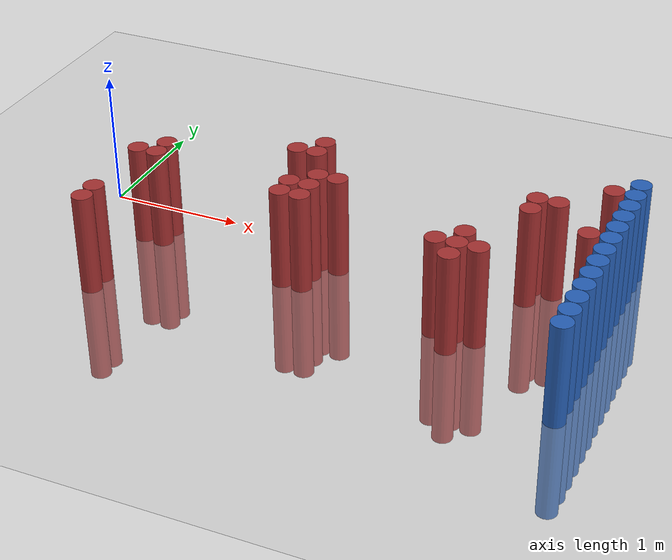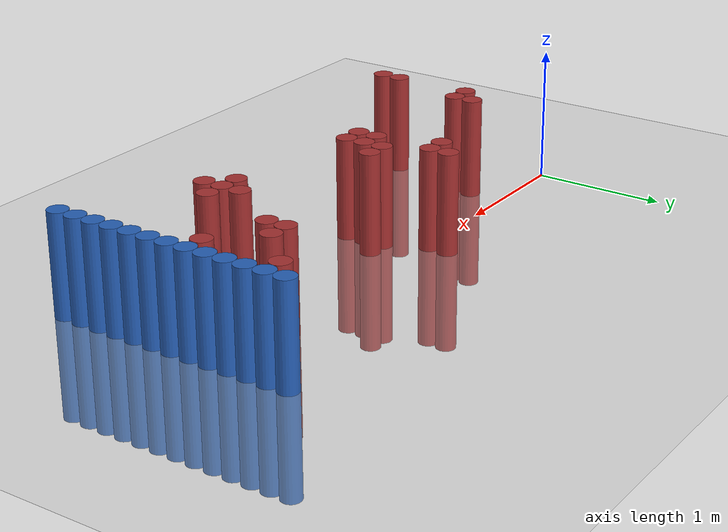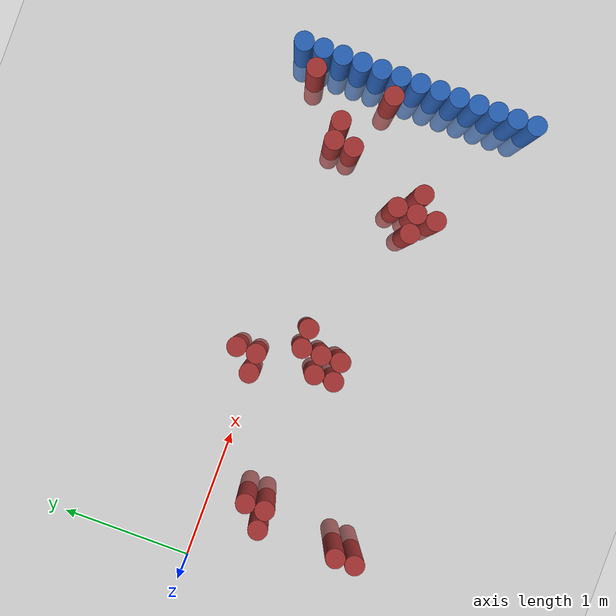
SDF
<sdf version="1.6">
 <world name="default">
  <model name="ground_plane">
   <static>1</static>
   <link name="link">
    <collision name="collision">
     <geometry><plane><normal>0 0 1</normal><size>100 100</size></plane></geometry>
     <surface><friction><ode><mu>100</mu><mu2>50</mu2></ode></friction></surface>
    </collision>
    <visual name="visual">
     <cast_shadows>0</cast_shadows>
     <geometry><plane><normal>0 0 1</normal><size>100 100</size></plane></geometry>
     <material>
      <script><uri>file://media/materials/scripts/gazebo.material</uri><name>Gazebo/Grey</name></script>
     </material>
    </visual>
   </link>
  </model>
  <model name="unit_cylinder_96">
   <static>1</static>
   <pose>3.925000 -1.325000 0.000000 0.000000 0.000000 0.000000</pose>
   <link name="link">
    <inertial>
     <mass>1</mass>
     <inertia><ixx>0.145833</ixx><ixy>0</ixy><ixz>0</ixz><iyy>0.145833</iyy><iyz>0</iyz><izz>0.125</izz></inertia>
    </inertial>
    <collision name="collision">
     <geometry><cylinder><radius>0.075000</radius><length>1.5</length></cylinder></geometry>
    </collision>
    <visual name="visual">
     <geometry><cylinder><radius>0.075000</radius><length>1.5</length></cylinder></geometry>
     <material>
      <ambient>0.152000 0.379000 0.720000 1</ambient>
      <diffuse>0.152000 0.379000 0.720000 1</diffuse>
     </material>
     <material>
      <script><name>Gazebo/Grey</name><uri>file://media/materials/scripts/gazebo.material</uri></script>
     </material>
    </visual>
   </link>
  </model>
  <model name="unit_cylinder_98">
   <static>1</static>
   <pose>3.925000 -1.175000 0.000000 0.000000 0.000000 0.000000</pose>
   <link name="link">
    <inertial>
     <mass>1</mass>
     <inertia><ixx>0.145833</ixx><ixy>0</ixy><ixz>0</ixz><iyy>0.145833</iyy><iyz>0</iyz><izz>0.125</izz></inertia>
    </inertial>
    <collision name="collision">
     <geometry><cylinder><radius>0.075000</radius><length>1.5</length></cylinder></geometry>
    </collision>
    <visual name="visual">
     <geometry><cylinder><radius>0.075000</radius><length>1.5</length></cylinder></geometry>
     <material>
      <ambient>0.152000 0.379000 0.720000 1</ambient>
      <diffuse>0.152000 0.379000 0.720000 1</diffuse>
     </material>
     <material>
      <script><name>Gazebo/Grey</name><uri>file://media/materials/scripts/gazebo.material</uri></script>
     </material>
    </visual>
   </link>
  </model>
  <model name="unit_cylinder_100">
   <static>1</static>
   <pose>3.925000 -1.025000 0.000000 0.000000 0.000000 0.000000</pose>
   <link name="link">
    <inertial>
     <mass>1</mass>
     <inertia><ixx>0.145833</ixx><ixy>0</ixy><ixz>0</ixz><iyy>0.145833</iyy><iyz>0</iyz><izz>0.125</izz></inertia>
    </inertial>
    <collision name="collision">
     <geometry><cylinder><radius>0.075000</radius><length>1.5</length></cylinder></geometry>
    </collision>
    <visual name="visual">
     <geometry><cylinder><radius>0.075000</radius><length>1.5</length></cylinder></geometry>
     <material>
      <ambient>0.152000 0.379000 0.720000 1</ambient>
      <diffuse>0.152000 0.379000 0.720000 1</diffuse>
     </material>
     <material>
      <script><name>Gazebo/Grey</name><uri>file://media/materials/scripts/gazebo.material</uri></script>
     </material>
    </visual>
   </link>
  </model>
  <model name="unit_cylinder_102">
   <static>1</static>
   <pose>3.925000 -0.875000 0.000000 0.000000 0.000000 0.000000</pose>
   <link name="link">
    <inertial>
     <mass>1</mass>
     <inertia><ixx>0.145833</ixx><ixy>0</ixy><ixz>0</ixz><iyy>0.145833</iyy><iyz>0</iyz><izz>0.125</izz></inertia>
    </inertial>
    <collision name="collision">
     <geometry><cylinder><radius>0.075000</radius><length>1.5</length></cylinder></geometry>
    </collision>
    <visual name="visual">
     <geometry><cylinder><radius>0.075000</radius><length>1.5</length></cylinder></geometry>
     <material>
      <ambient>0.152000 0.379000 0.720000 1</ambient>
      <diffuse>0.152000 0.379000 0.720000 1</diffuse>
     </material>
     <material>
      <script><name>Gazebo/Grey</name><uri>file://media/materials/scripts/gazebo.material</uri></script>
     </material>
    </visual>
   </link>
  </model>
  <model name="unit_cylinder_104">
   <static>1</static>
   <pose>3.925000 -0.725000 0.000000 0.000000 0.000000 0.000000</pose>
   <link name="link">
    <inertial>
     <mass>1</mass>
     <inertia><ixx>0.145833</ixx><ixy>0</ixy><ixz>0</ixz><iyy>0.145833</iyy><iyz>0</iyz><izz>0.125</izz></inertia>
    </inertial>
    <collision name="collision">
     <geometry><cylinder><radius>0.075000</radius><length>1.5</length></cylinder></geometry>
    </collision>
    <visual name="visual">
     <geometry><cylinder><radius>0.075000</radius><length>1.5</length></cylinder></geometry>
     <material>
      <ambient>0.152000 0.379000 0.720000 1</ambient>
      <diffuse>0.152000 0.379000 0.720000 1</diffuse>
     </material>
     <material>
      <script><name>Gazebo/Grey</name><uri>file://media/materials/scripts/gazebo.material</uri></script>
     </material>
    </visual>
   </link>
  </model>
  <model name="unit_cylinder_106">
   <static>1</static>
   <pose>3.925000 -0.575000 0.000000 0.000000 0.000000 0.000000</pose>
   <link name="link">
    <inertial>
     <mass>1</mass>
     <inertia><ixx>0.145833</ixx><ixy>0</ixy><ixz>0</ixz><iyy>0.145833</iyy><iyz>0</iyz><izz>0.125</izz></inertia>
    </inertial>
    <collision name="collision">
     <geometry><cylinder><radius>0.075000</radius><length>1.5</length></cylinder></geometry>
    </collision>
    <visual name="visual">
     <geometry><cylinder><radius>0.075000</radius><length>1.5</length></cylinder></geometry>
     <material>
      <ambient>0.152000 0.379000 0.720000 1</ambient>
      <diffuse>0.152000 0.379000 0.720000 1</diffuse>
     </material>
     <material>
      <script><name>Gazebo/Grey</name><uri>file://media/materials/scripts/gazebo.material</uri></script>
     </material>
    </visual>
   </link>
  </model>
  <model name="unit_cylinder_108">
   <static>1</static>
   <pose>3.925000 -0.425000 0.000000 0.000000 0.000000 0.000000</pose>
   <link name="link">
    <inertial>
     <mass>1</mass>
     <inertia><ixx>0.145833</ixx><ixy>0</ixy><ixz>0</ixz><iyy>0.145833</iyy><iyz>0</iyz><izz>0.125</izz></inertia>
    </inertial>
    <collision name="collision">
     <geometry><cylinder><radius>0.075000</radius><length>1.5</length></cylinder></geometry>
    </collision>
    <visual name="visual">
     <geometry><cylinder><radius>0.075000</radius><length>1.5</length></cylinder></geometry>
     <material>
      <ambient>0.152000 0.379000 0.720000 1</ambient>
      <diffuse>0.152000 0.379000 0.720000 1</diffuse>
     </material>
     <material>
      <script><name>Gazebo/Grey</name><uri>file://media/materials/scripts/gazebo.material</uri></script>
     </material>
    </visual>
   </link>
  </model>
  <model name="unit_cylinder_110">
   <static>1</static>
   <pose>3.925000 -0.275000 0.000000 0.000000 0.000000 0.000000</pose>
   <link name="link">
    <inertial>
     <mass>1</mass>
     <inertia><ixx>0.145833</ixx><ixy>0</ixy><ixz>0</ixz><iyy>0.145833</iyy><iyz>0</iyz><izz>0.125</izz></inertia>
    </inertial>
    <collision name="collision">
     <geometry><cylinder><radius>0.075000</radius><length>1.5</length></cylinder></geometry>
    </collision>
    <visual name="visual">
     <geometry><cylinder><radius>0.075000</radius><length>1.5</length></cylinder></geometry>
     <material>
      <ambient>0.152000 0.379000 0.720000 1</ambient>
      <diffuse>0.152000 0.379000 0.720000 1</diffuse>
     </material>
     <material>
      <script><name>Gazebo/Grey</name><uri>file://media/materials/scripts/gazebo.material</uri></script>
     </material>
    </visual>
   </link>
  </model>
  <model name="unit_cylinder_112">
   <static>1</static>
   <pose>3.925000 -0.125000 0.000000 0.000000 0.000000 0.000000</pose>
   <link name="link">
    <inertial>
     <mass>1</mass>
     <inertia><ixx>0.145833</ixx><ixy>0</ixy><ixz>0</ixz><iyy>0.145833</iyy><iyz>0</iyz><izz>0.125</izz></inertia>
    </inertial>
    <collision name="collision">
     <geometry><cylinder><radius>0.075000</radius><length>1.5</length></cylinder></geometry>
    </collision>
    <visual name="visual">
     <geometry><cylinder><radius>0.075000</radius><length>1.5</length></cylinder></geometry>
     <material>
      <ambient>0.152000 0.379000 0.720000 1</ambient>
      <diffuse>0.152000 0.379000 0.720000 1</diffuse>
     </material>
     <material>
      <script><name>Gazebo/Grey</name><uri>file://media/materials/scripts/gazebo.material</uri></script>
     </material>
    </visual>
   </link>
  </model>
  <model name="unit_cylinder_114">
   <static>1</static>
   <pose>3.925000 0.025000 0.000000 0.000000 0.000000 0.000000</pose>
   <link name="link">
    <inertial>
     <mass>1</mass>
     <inertia><ixx>0.145833</ixx><ixy>0</ixy><ixz>0</ixz><iyy>0.145833</iyy><iyz>0</iyz><izz>0.125</izz></inertia>
    </inertial>
    <collision name="collision">
     <geometry><cylinder><radius>0.075000</radius><length>1.5</length></cylinder></geometry>
    </collision>
    <visual name="visual">
     <geometry><cylinder><radius>0.075000</radius><length>1.5</length></cylinder></geometry>
     <material>
      <ambient>0.152000 0.379000 0.720000 1</ambient>
      <diffuse>0.152000 0.379000 0.720000 1</diffuse>
     </material>
     <material>
      <script><name>Gazebo/Grey</name><uri>file://media/materials/scripts/gazebo.material</uri></script>
     </material>
    </visual>
   </link>
  </model>
  <model name="unit_cylinder_116">
   <static>1</static>
   <pose>3.925000 0.175000 0.000000 0.000000 0.000000 0.000000</pose>
   <link name="link">
    <inertial>
     <mass>1</mass>
     <inertia><ixx>0.145833</ixx><ixy>0</ixy><ixz>0</ixz><iyy>0.145833</iyy><iyz>0</iyz><izz>0.125</izz></inertia>
    </inertial>
    <collision name="collision">
     <geometry><cylinder><radius>0.075000</radius><length>1.5</length></cylinder></geometry>
    </collision>
    <visual name="visual">
     <geometry><cylinder><radius>0.075000</radius><length>1.5</length></cylinder></geometry>
     <material>
      <ambient>0.152000 0.379000 0.720000 1</ambient>
      <diffuse>0.152000 0.379000 0.720000 1</diffuse>
     </material>
     <material>
      <script><name>Gazebo/Grey</name><uri>file://media/materials/scripts/gazebo.material</uri></script>
     </material>
    </visual>
   </link>
  </model>
  <model name="unit_cylinder_118">
   <static>1</static>
   <pose>3.925000 0.325000 0.000000 0.000000 0.000000 0.000000</pose>
   <link name="link">
    <inertial>
     <mass>1</mass>
     <inertia><ixx>0.145833</ixx><ixy>0</ixy><ixz>0</ixz><iyy>0.145833</iyy><iyz>0</iyz><izz>0.125</izz></inertia>
    </inertial>
    <collision name="collision">
     <geometry><cylinder><radius>0.075000</radius><length>1.5</length></cylinder></geometry>
    </collision>
    <visual name="visual">
     <geometry><cylinder><radius>0.075000</radius><length>1.5</length></cylinder></geometry>
     <material>
      <ambient>0.152000 0.379000 0.720000 1</ambient>
      <diffuse>0.152000 0.379000 0.720000 1</diffuse>
     </material>
     <material>
      <script><name>Gazebo/Grey</name><uri>file://media/materials/scripts/gazebo.material</uri></script>
     </material>
    </visual>
   </link>
  </model>
  <model name="unit_cylinder_120">
   <static>1</static>
   <pose>3.925000 0.475000 0.000000 0.000000 0.000000 0.000000</pose>
   <link name="link">
    <inertial>
     <mass>1</mass>
     <inertia><ixx>0.145833</ixx><ixy>0</ixy><ixz>0</ixz><iyy>0.145833</iyy><iyz>0</iyz><izz>0.125</izz></inertia>
    </inertial>
    <collision name="collision">
     <geometry><cylinder><radius>0.075000</radius><length>1.5</length></cylinder></geometry>
    </collision>
    <visual name="visual">
     <geometry><cylinder><radius>0.075000</radius><length>1.5</length></cylinder></geometry>
     <material>
      <ambient>0.152000 0.379000 0.720000 1</ambient>
      <diffuse>0.152000 0.379000 0.720000 1</diffuse>
     </material>
     <material>
      <script><name>Gazebo/Grey</name><uri>file://media/materials/scripts/gazebo.material</uri></script>
     </material>
    </visual>
   </link>
  </model>
  <model name="unit_cylinder_333">
   <static>1</static>
   <pose>0.475000 -1.175000 0.000000 0.000000 0.000000 0.000000</pose>
   <link name="link">
    <inertial>
     <mass>1</mass>
     <inertia><ixx>0.145833</ixx><ixy>0</ixy><ixz>0</ixz><iyy>0.145833</iyy><iyz>0</iyz><izz>0.125</izz></inertia>
    </inertial>
    <collision name="collision">
     <geometry><cylinder><radius>0.075000</radius><length>1.5</length></cylinder></geometry>
    </collision>
    <visual name="visual">
     <geometry><cylinder><radius>0.075000</radius><length>1.5</length></cylinder></geometry>
     <material>
      <ambient>0.648000 0.192000 0.192000 1</ambient>
      <diffuse>0.648000 0.192000 0.192000 1</diffuse>
     </material>
     <material>
      <script><name>Gazebo/Grey</name><uri>file://media/materials/scripts/gazebo.material</uri></script>
     </material>
    </visual>
   </link>
  </model>
  <model name="unit_cylinder_334">
   <static>1</static>
   <pose>0.475000 -1.025000 0.000000 0.000000 0.000000 0.000000</pose>
   <link name="link">
    <inertial>
     <mass>1</mass>
     <inertia><ixx>0.145833</ixx><ixy>0</ixy><ixz>0</ixz><iyy>0.145833</iyy><iyz>0</iyz><izz>0.125</izz></inertia>
    </inertial>
    <collision name="collision">
     <geometry><cylinder><radius>0.075000</radius><length>1.5</length></cylinder></geometry>
    </collision>
    <visual name="visual">
     <geometry><cylinder><radius>0.075000</radius><length>1.5</length></cylinder></geometry>
     <material>
      <ambient>0.648000 0.192000 0.192000 1</ambient>
      <diffuse>0.648000 0.192000 0.192000 1</diffuse>
     </material>
     <material>
      <script><name>Gazebo/Grey</name><uri>file://media/materials/scripts/gazebo.material</uri></script>
     </material>
    </visual>
   </link>
  </model>
  <model name="unit_cylinder_335">
   <static>1</static>
   <pose>0.475000 -0.425000 0.000000 0.000000 0.000000 0.000000</pose>
   <link name="link">
    <inertial>
     <mass>1</mass>
     <inertia><ixx>0.145833</ixx><ixy>0</ixy><ixz>0</ixz><iyy>0.145833</iyy><iyz>0</iyz><izz>0.125</izz></inertia>
    </inertial>
    <collision name="collision">
     <geometry><cylinder><radius>0.075000</radius><length>1.5</length></cylinder></geometry>
    </collision>
    <visual name="visual">
     <geometry><cylinder><radius>0.075000</radius><length>1.5</length></cylinder></geometry>
     <material>
      <ambient>0.648000 0.192000 0.192000 1</ambient>
      <diffuse>0.648000 0.192000 0.192000 1</diffuse>
     </material>
     <material>
      <script><name>Gazebo/Grey</name><uri>file://media/materials/scripts/gazebo.material</uri></script>
     </material>
    </visual>
   </link>
  </model>
  <model name="unit_cylinder_337">
   <static>1</static>
   <pose>0.625000 -0.425000 0.000000 0.000000 0.000000 0.000000</pose>
   <link name="link">
    <inertial>
     <mass>1</mass>
     <inertia><ixx>0.145833</ixx><ixy>0</ixy><ixz>0</ixz><iyy>0.145833</iyy><iyz>0</iyz><izz>0.125</izz></inertia>
    </inertial>
    <collision name="collision">
     <geometry><cylinder><radius>0.075000</radius><length>1.5</length></cylinder></geometry>
    </collision>
    <visual name="visual">
     <geometry><cylinder><radius>0.075000</radius><length>1.5</length></cylinder></geometry>
     <material>
      <ambient>0.648000 0.192000 0.192000 1</ambient>
      <diffuse>0.648000 0.192000 0.192000 1</diffuse>
     </material>
     <material>
      <script><name>Gazebo/Grey</name><uri>file://media/materials/scripts/gazebo.material</uri></script>
     </material>
    </visual>
   </link>
  </model>
  <model name="unit_cylinder_338">
   <static>1</static>
   <pose>0.625000 -0.275000 0.000000 0.000000 0.000000 0.000000</pose>
   <link name="link">
    <inertial>
     <mass>1</mass>
     <inertia><ixx>0.145833</ixx><ixy>0</ixy><ixz>0</ixz><iyy>0.145833</iyy><iyz>0</iyz><izz>0.125</izz></inertia>
    </inertial>
    <collision name="collision">
     <geometry><cylinder><radius>0.075000</radius><length>1.5</length></cylinder></geometry>
    </collision>
    <visual name="visual">
     <geometry><cylinder><radius>0.075000</radius><length>1.5</length></cylinder></geometry>
     <material>
      <ambient>0.648000 0.192000 0.192000 1</ambient>
      <diffuse>0.648000 0.192000 0.192000 1</diffuse>
     </material>
     <material>
      <script><name>Gazebo/Grey</name><uri>file://media/materials/scripts/gazebo.material</uri></script>
     </material>
    </visual>
   </link>
  </model>
  <model name="unit_cylinder_344">
   <static>1</static>
   <pose>1.525000 0.025000 0.000000 0.000000 0.000000 0.000000</pose>
   <link name="link">
    <inertial>
     <mass>1</mass>
     <inertia><ixx>0.145833</ixx><ixy>0</ixy><ixz>0</ixz><iyy>0.145833</iyy><iyz>0</iyz><izz>0.125</izz></inertia>
    </inertial>
    <collision name="collision">
     <geometry><cylinder><radius>0.075000</radius><length>1.5</length></cylinder></geometry>
    </collision>
    <visual name="visual">
     <geometry><cylinder><radius>0.075000</radius><length>1.5</length></cylinder></geometry>
     <material>
      <ambient>0.648000 0.192000 0.192000 1</ambient>
      <diffuse>0.648000 0.192000 0.192000 1</diffuse>
     </material>
     <material>
      <script><name>Gazebo/Grey</name><uri>file://media/materials/scripts/gazebo.material</uri></script>
     </material>
    </visual>
   </link>
  </model>
  <model name="unit_cylinder_345">
   <static>1</static>
   <pose>1.675000 -0.575000 0.000000 0.000000 0.000000 0.000000</pose>
   <link name="link">
    <inertial>
     <mass>1</mass>
     <inertia><ixx>0.145833</ixx><ixy>0</ixy><ixz>0</ixz><iyy>0.145833</iyy><iyz>0</iyz><izz>0.125</izz></inertia>
    </inertial>
    <collision name="collision">
     <geometry><cylinder><radius>0.075000</radius><length>1.5</length></cylinder></geometry>
    </collision>
    <visual name="visual">
     <geometry><cylinder><radius>0.075000</radius><length>1.5</length></cylinder></geometry>
     <material>
      <ambient>0.648000 0.192000 0.192000 1</ambient>
      <diffuse>0.648000 0.192000 0.192000 1</diffuse>
     </material>
     <material>
      <script><name>Gazebo/Grey</name><uri>file://media/materials/scripts/gazebo.material</uri></script>
     </material>
    </visual>
   </link>
  </model>
  <model name="unit_cylinder_346">
   <static>1</static>
   <pose>1.675000 -0.425000 0.000000 0.000000 0.000000 0.000000</pose>
   <link name="link">
    <inertial>
     <mass>1</mass>
     <inertia><ixx>0.145833</ixx><ixy>0</ixy><ixz>0</ixz><iyy>0.145833</iyy><iyz>0</iyz><izz>0.125</izz></inertia>
    </inertial>
    <collision name="collision">
     <geometry><cylinder><radius>0.075000</radius><length>1.5</length></cylinder></geometry>
    </collision>
    <visual name="visual">
     <geometry><cylinder><radius>0.075000</radius><length>1.5</length></cylinder></geometry>
     <material>
      <ambient>0.648000 0.192000 0.192000 1</ambient>
      <diffuse>0.648000 0.192000 0.192000 1</diffuse>
     </material>
     <material>
      <script><name>Gazebo/Grey</name><uri>file://media/materials/scripts/gazebo.material</uri></script>
     </material>
    </visual>
   </link>
  </model>
  <model name="unit_cylinder_347">
   <static>1</static>
   <pose>1.675000 0.025000 0.000000 0.000000 0.000000 0.000000</pose>
   <link name="link">
    <inertial>
     <mass>1</mass>
     <inertia><ixx>0.145833</ixx><ixy>0</ixy><ixz>0</ixz><iyy>0.145833</iyy><iyz>0</iyz><izz>0.125</izz></inertia>
    </inertial>
    <collision name="collision">
     <geometry><cylinder><radius>0.075000</radius><length>1.5</length></cylinder></geometry>
    </collision>
    <visual name="visual">
     <geometry><cylinder><radius>0.075000</radius><length>1.5</length></cylinder></geometry>
     <material>
      <ambient>0.648000 0.192000 0.192000 1</ambient>
      <diffuse>0.648000 0.192000 0.192000 1</diffuse>
     </material>
     <material>
      <script><name>Gazebo/Grey</name><uri>file://media/materials/scripts/gazebo.material</uri></script>
     </material>
    </visual>
   </link>
  </model>
  <model name="unit_cylinder_348">
   <static>1</static>
   <pose>1.675000 0.175000 0.000000 0.000000 0.000000 0.000000</pose>
   <link name="link">
    <inertial>
     <mass>1</mass>
     <inertia><ixx>0.145833</ixx><ixy>0</ixy><ixz>0</ixz><iyy>0.145833</iyy><iyz>0</iyz><izz>0.125</izz></inertia>
    </inertial>
    <collision name="collision">
     <geometry><cylinder><radius>0.075000</radius><length>1.5</length></cylinder></geometry>
    </collision>
    <visual name="visual">
     <geometry><cylinder><radius>0.075000</radius><length>1.5</length></cylinder></geometry>
     <material>
      <ambient>0.648000 0.192000 0.192000 1</ambient>
      <diffuse>0.648000 0.192000 0.192000 1</diffuse>
     </material>
     <material>
      <script><name>Gazebo/Grey</name><uri>file://media/materials/scripts/gazebo.material</uri></script>
     </material>
    </visual>
   </link>
  </model>
  <model name="unit_cylinder_349">
   <static>1</static>
   <pose>1.825000 -0.575000 0.000000 0.000000 0.000000 0.000000</pose>
   <link name="link">
    <inertial>
     <mass>1</mass>
     <inertia><ixx>0.145833</ixx><ixy>0</ixy><ixz>0</ixz><iyy>0.145833</iyy><iyz>0</iyz><izz>0.125</izz></inertia>
    </inertial>
    <collision name="collision">
     <geometry><cylinder><radius>0.075000</radius><length>1.5</length></cylinder></geometry>
    </collision>
    <visual name="visual">
     <geometry><cylinder><radius>0.075000</radius><length>1.5</length></cylinder></geometry>
     <material>
      <ambient>0.648000 0.192000 0.192000 1</ambient>
      <diffuse>0.648000 0.192000 0.192000 1</diffuse>
     </material>
     <material>
      <script><name>Gazebo/Grey</name><uri>file://media/materials/scripts/gazebo.material</uri></script>
     </material>
    </visual>
   </link>
  </model>
  <model name="unit_cylinder_350">
   <static>1</static>
   <pose>1.825000 -0.425000 0.000000 0.000000 0.000000 0.000000</pose>
   <link name="link">
    <inertial>
     <mass>1</mass>
     <inertia><ixx>0.145833</ixx><ixy>0</ixy><ixz>0</ixz><iyy>0.145833</iyy><iyz>0</iyz><izz>0.125</izz></inertia>
    </inertial>
    <collision name="collision">
     <geometry><cylinder><radius>0.075000</radius><length>1.5</length></cylinder></geometry>
    </collision>
    <visual name="visual">
     <geometry><cylinder><radius>0.075000</radius><length>1.5</length></cylinder></geometry>
     <material>
      <ambient>0.648000 0.192000 0.192000 1</ambient>
      <diffuse>0.648000 0.192000 0.192000 1</diffuse>
     </material>
     <material>
      <script><name>Gazebo/Grey</name><uri>file://media/materials/scripts/gazebo.material</uri></script>
     </material>
    </visual>
   </link>
  </model>
  <model name="unit_cylinder_351">
   <static>1</static>
   <pose>1.825000 -0.275000 0.000000 0.000000 0.000000 0.000000</pose>
   <link name="link">
    <inertial>
     <mass>1</mass>
     <inertia><ixx>0.145833</ixx><ixy>0</ixy><ixz>0</ixz><iyy>0.145833</iyy><iyz>0</iyz><izz>0.125</izz></inertia>
    </inertial>
    <collision name="collision">
     <geometry><cylinder><radius>0.075000</radius><length>1.5</length></cylinder></geometry>
    </collision>
    <visual name="visual">
     <geometry><cylinder><radius>0.075000</radius><length>1.5</length></cylinder></geometry>
     <material>
      <ambient>0.648000 0.192000 0.192000 1</ambient>
      <diffuse>0.648000 0.192000 0.192000 1</diffuse>
     </material>
     <material>
      <script><name>Gazebo/Grey</name><uri>file://media/materials/scripts/gazebo.material</uri></script>
     </material>
    </visual>
   </link>
  </model>
  <model name="unit_cylinder_354">
   <static>1</static>
   <pose>1.975000 -0.275000 0.000000 0.000000 0.000000 0.000000</pose>
   <link name="link">
    <inertial>
     <mass>1</mass>
     <inertia><ixx>0.145833</ixx><ixy>0</ixy><ixz>0</ixz><iyy>0.145833</iyy><iyz>0</iyz><izz>0.125</izz></inertia>
    </inertial>
    <collision name="collision">
     <geometry><cylinder><radius>0.075000</radius><length>1.5</length></cylinder></geometry>
    </collision>
    <visual name="visual">
     <geometry><cylinder><radius>0.075000</radius><length>1.5</length></cylinder></geometry>
     <material>
      <ambient>0.648000 0.192000 0.192000 1</ambient>
      <diffuse>0.648000 0.192000 0.192000 1</diffuse>
     </material>
     <material>
      <script><name>Gazebo/Grey</name><uri>file://media/materials/scripts/gazebo.material</uri></script>
     </material>
    </visual>
   </link>
  </model>
  <model name="unit_cylinder_365">
   <static>1</static>
   <pose>2.875000 -0.725000 0.000000 0.000000 0.000000 0.000000</pose>
   <link name="link">
    <inertial>
     <mass>1</mass>
     <inertia><ixx>0.145833</ixx><ixy>0</ixy><ixz>0</ixz><iyy>0.145833</iyy><iyz>0</iyz><izz>0.125</izz></inertia>
    </inertial>
    <collision name="collision">
     <geometry><cylinder><radius>0.075000</radius><length>1.5</length></cylinder></geometry>
    </collision>
    <visual name="visual">
     <geometry><cylinder><radius>0.075000</radius><length>1.5</length></cylinder></geometry>
     <material>
      <ambient>0.648000 0.192000 0.192000 1</ambient>
      <diffuse>0.648000 0.192000 0.192000 1</diffuse>
     </material>
     <material>
      <script><name>Gazebo/Grey</name><uri>file://media/materials/scripts/gazebo.material</uri></script>
     </material>
    </visual>
   </link>
  </model>
  <model name="unit_cylinder_366">
   <static>1</static>
   <pose>3.025000 -0.875000 0.000000 0.000000 0.000000 0.000000</pose>
   <link name="link">
    <inertial>
     <mass>1</mass>
     <inertia><ixx>0.145833</ixx><ixy>0</ixy><ixz>0</ixz><iyy>0.145833</iyy><iyz>0</iyz><izz>0.125</izz></inertia>
    </inertial>
    <collision name="collision">
     <geometry><cylinder><radius>0.075000</radius><length>1.5</length></cylinder></geometry>
    </collision>
    <visual name="visual">
     <geometry><cylinder><radius>0.075000</radius><length>1.5</length></cylinder></geometry>
     <material>
      <ambient>0.648000 0.192000 0.192000 1</ambient>
      <diffuse>0.648000 0.192000 0.192000 1</diffuse>
     </material>
     <material>
      <script><name>Gazebo/Grey</name><uri>file://media/materials/scripts/gazebo.material</uri></script>
     </material>
    </visual>
   </link>
  </model>
  <model name="unit_cylinder_367">
   <static>1</static>
   <pose>3.025000 -0.725000 0.000000 0.000000 0.000000 0.000000</pose>
   <link name="link">
    <inertial>
     <mass>1</mass>
     <inertia><ixx>0.145833</ixx><ixy>0</ixy><ixz>0</ixz><iyy>0.145833</iyy><iyz>0</iyz><izz>0.125</izz></inertia>
    </inertial>
    <collision name="collision">
     <geometry><cylinder><radius>0.075000</radius><length>1.5</length></cylinder></geometry>
    </collision>
    <visual name="visual">
     <geometry><cylinder><radius>0.075000</radius><length>1.5</length></cylinder></geometry>
     <material>
      <ambient>0.648000 0.192000 0.192000 1</ambient>
      <diffuse>0.648000 0.192000 0.192000 1</diffuse>
     </material>
     <material>
      <script><name>Gazebo/Grey</name><uri>file://media/materials/scripts/gazebo.material</uri></script>
     </material>
    </visual>
   </link>
  </model>
  <model name="unit_cylinder_368">
   <static>1</static>
   <pose>3.025000 -0.575000 0.000000 0.000000 0.000000 0.000000</pose>
   <link name="link">
    <inertial>
     <mass>1</mass>
     <inertia><ixx>0.145833</ixx><ixy>0</ixy><ixz>0</ixz><iyy>0.145833</iyy><iyz>0</iyz><izz>0.125</izz></inertia>
    </inertial>
    <collision name="collision">
     <geometry><cylinder><radius>0.075000</radius><length>1.5</length></cylinder></geometry>
    </collision>
    <visual name="visual">
     <geometry><cylinder><radius>0.075000</radius><length>1.5</length></cylinder></geometry>
     <material>
      <ambient>0.648000 0.192000 0.192000 1</ambient>
      <diffuse>0.648000 0.192000 0.192000 1</diffuse>
     </material>
     <material>
      <script><name>Gazebo/Grey</name><uri>file://media/materials/scripts/gazebo.material</uri></script>
     </material>
    </visual>
   </link>
  </model>
  <model name="unit_cylinder_369">
   <static>1</static>
   <pose>3.175000 -0.725000 0.000000 0.000000 0.000000 0.000000</pose>
   <link name="link">
    <inertial>
     <mass>1</mass>
     <inertia><ixx>0.145833</ixx><ixy>0</ixy><ixz>0</ixz><iyy>0.145833</iyy><iyz>0</iyz><izz>0.125</izz></inertia>
    </inertial>
    <collision name="collision">
     <geometry><cylinder><radius>0.075000</radius><length>1.5</length></cylinder></geometry>
    </collision>
    <visual name="visual">
     <geometry><cylinder><radius>0.075000</radius><length>1.5</length></cylinder></geometry>
     <material>
      <ambient>0.648000 0.192000 0.192000 1</ambient>
      <diffuse>0.648000 0.192000 0.192000 1</diffuse>
     </material>
     <material>
      <script><name>Gazebo/Grey</name><uri>file://media/materials/scripts/gazebo.material</uri></script>
     </material>
    </visual>
   </link>
  </model>
  <model name="unit_cylinder_372">
   <static>1</static>
   <pose>3.325000 -0.125000 0.000000 0.000000 0.000000 0.000000</pose>
   <link name="link">
    <inertial>
     <mass>1</mass>
     <inertia><ixx>0.145833</ixx><ixy>0</ixy><ixz>0</ixz><iyy>0.145833</iyy><iyz>0</iyz><izz>0.125</izz></inertia>
    </inertial>
    <collision name="collision">
     <geometry><cylinder><radius>0.075000</radius><length>1.5</length></cylinder></geometry>
    </collision>
    <visual name="visual">
     <geometry><cylinder><radius>0.075000</radius><length>1.5</length></cylinder></geometry>
     <material>
      <ambient>0.648000 0.192000 0.192000 1</ambient>
      <diffuse>0.648000 0.192000 0.192000 1</diffuse>
     </material>
     <material>
      <script><name>Gazebo/Grey</name><uri>file://media/materials/scripts/gazebo.material</uri></script>
     </material>
    </visual>
   </link>
  </model>
  <model name="unit_cylinder_373">
   <static>1</static>
   <pose>3.325000 0.025000 0.000000 0.000000 0.000000 0.000000</pose>
   <link name="link">
    <inertial>
     <mass>1</mass>
     <inertia><ixx>0.145833</ixx><ixy>0</ixy><ixz>0</ixz><iyy>0.145833</iyy><iyz>0</iyz><izz>0.125</izz></inertia>
    </inertial>
    <collision name="collision">
     <geometry><cylinder><radius>0.075000</radius><length>1.5</length></cylinder></geometry>
    </collision>
    <visual name="visual">
     <geometry><cylinder><radius>0.075000</radius><length>1.5</length></cylinder></geometry>
     <material>
      <ambient>0.648000 0.192000 0.192000 1</ambient>
      <diffuse>0.648000 0.192000 0.192000 1</diffuse>
     </material>
     <material>
      <script><name>Gazebo/Grey</name><uri>file://media/materials/scripts/gazebo.material</uri></script>
     </material>
    </visual>
   </link>
  </model>
  <model name="unit_cylinder_376">
   <static>1</static>
   <pose>3.475000 0.025000 0.000000 0.000000 0.000000 0.000000</pose>
   <link name="link">
    <inertial>
     <mass>1</mass>
     <inertia><ixx>0.145833</ixx><ixy>0</ixy><ixz>0</ixz><iyy>0.145833</iyy><iyz>0</iyz><izz>0.125</izz></inertia>
    </inertial>
    <collision name="collision">
     <geometry><cylinder><radius>0.075000</radius><length>1.5</length></cylinder></geometry>
    </collision>
    <visual name="visual">
     <geometry><cylinder><radius>0.075000</radius><length>1.5</length></cylinder></geometry>
     <material>
      <ambient>0.648000 0.192000 0.192000 1</ambient>
      <diffuse>0.648000 0.192000 0.192000 1</diffuse>
     </material>
     <material>
      <script><name>Gazebo/Grey</name><uri>file://media/materials/scripts/gazebo.material</uri></script>
     </material>
    </visual>
   </link>
  </model>
  <model name="unit_cylinder_384">
   <static>1</static>
   <pose>3.775000 -0.275000 0.000000 0.000000 0.000000 0.000000</pose>
   <link name="link">
    <inertial>
     <mass>1</mass>
     <inertia><ixx>0.145833</ixx><ixy>0</ixy><ixz>0</ixz><iyy>0.145833</iyy><iyz>0</iyz><izz>0.125</izz></inertia>
    </inertial>
    <collision name="collision">
     <geometry><cylinder><radius>0.075000</radius><length>1.5</length></cylinder></geometry>
    </collision>
    <visual name="visual">
     <geometry><cylinder><radius>0.075000</radius><length>1.5</length></cylinder></geometry>
     <material>
      <ambient>0.648000 0.192000 0.192000 1</ambient>
      <diffuse>0.648000 0.192000 0.192000 1</diffuse>
     </material>
     <material>
      <script><name>Gazebo/Grey</name><uri>file://media/materials/scripts/gazebo.material</uri></script>
     </material>
    </visual>
   </link>
  </model>
  <model name="unit_cylinder_385">
   <static>1</static>
   <pose>3.775000 0.325000 0.000000 0.000000 0.000000 0.000000</pose>
   <link name="link">
    <inertial>
     <mass>1</mass>
     <inertia><ixx>0.145833</ixx><ixy>0</ixy><ixz>0</ixz><iyy>0.145833</iyy><iyz>0</iyz><izz>0.125</izz></inertia>
    </inertial>
    <collision name="collision">
     <geometry><cylinder><radius>0.075000</radius><length>1.5</length></cylinder></geometry>
    </collision>
    <visual name="visual">
     <geometry><cylinder><radius>0.075000</radius><length>1.5</length></cylinder></geometry>
     <material>
      <ambient>0.648000 0.192000 0.192000 1</ambient>
      <diffuse>0.648000 0.192000 0.192000 1</diffuse>
     </material>
     <material>
      <script><name>Gazebo/Grey</name><uri>file://media/materials/scripts/gazebo.material</uri></script>
     </material>
    </visual>
   </link>
  </model>
  <model name="unit_cylinder_397">
   <static>1</static>
   <pose>3.925000 -1.325000 0.000000 0.000000 0.000000 0.000000</pose>
   <link name="link">
    <inertial>
     <mass>1</mass>
     <inertia><ixx>0.145833</ixx><ixy>0</ixy><ixz>0</ixz><iyy>0.145833</iyy><iyz>0</iyz><izz>0.125</izz></inertia>
    </inertial>
    <collision name="collision">
     <geometry><cylinder><radius>0.075000</radius><length>1.5</length></cylinder></geometry>
    </collision>
    <visual name="visual">
     <geometry><cylinder><radius>0.075000</radius><length>1.5</length></cylinder></geometry>
     <material>
      <ambient>0.152000 0.379000 0.720000 1</ambient>
      <diffuse>0.152000 0.379000 0.720000 1</diffuse>
     </material>
     <material>
      <script><name>Gazebo/Grey</name><uri>file://media/materials/scripts/gazebo.material</uri></script>
     </material>
    </visual>
   </link>
  </model>
  <model name="unit_cylinder_398">
   <static>1</static>
   <pose>3.925000 -1.175000 0.000000 0.000000 0.000000 0.000000</pose>
   <link name="link">
    <inertial>
     <mass>1</mass>
     <inertia><ixx>0.145833</ixx><ixy>0</ixy><ixz>0</ixz><iyy>0.145833</iyy><iyz>0</iyz><izz>0.125</izz></inertia>
    </inertial>
    <collision name="collision">
     <geometry><cylinder><radius>0.075000</radius><length>1.5</length></cylinder></geometry>
    </collision>
    <visual name="visual">
     <geometry><cylinder><radius>0.075000</radius><length>1.5</length></cylinder></geometry>
     <material>
      <ambient>0.152000 0.379000 0.720000 1</ambient>
      <diffuse>0.152000 0.379000 0.720000 1</diffuse>
     </material>
     <material>
      <script><name>Gazebo/Grey</name><uri>file://media/materials/scripts/gazebo.material</uri></script>
     </material>
    </visual>
   </link>
  </model>
  <model name="unit_cylinder_399">
   <static>1</static>
   <pose>3.925000 -1.025000 0.000000 0.000000 0.000000 0.000000</pose>
   <link name="link">
    <inertial>
     <mass>1</mass>
     <inertia><ixx>0.145833</ixx><ixy>0</ixy><ixz>0</ixz><iyy>0.145833</iyy><iyz>0</iyz><izz>0.125</izz></inertia>
    </inertial>
    <collision name="collision">
     <geometry><cylinder><radius>0.075000</radius><length>1.5</length></cylinder></geometry>
    </collision>
    <visual name="visual">
     <geometry><cylinder><radius>0.075000</radius><length>1.5</length></cylinder></geometry>
     <material>
      <ambient>0.152000 0.379000 0.720000 1</ambient>
      <diffuse>0.152000 0.379000 0.720000 1</diffuse>
     </material>
     <material>
      <script><name>Gazebo/Grey</name><uri>file://media/materials/scripts/gazebo.material</uri></script>
     </material>
    </visual>
   </link>
  </model>
  <model name="unit_cylinder_400">
   <static>1</static>
   <pose>3.925000 -0.875000 0.000000 0.000000 0.000000 0.000000</pose>
   <link name="link">
    <inertial>
     <mass>1</mass>
     <inertia><ixx>0.145833</ixx><ixy>0</ixy><ixz>0</ixz><iyy>0.145833</iyy><iyz>0</iyz><izz>0.125</izz></inertia>
    </inertial>
    <collision name="collision">
     <geometry><cylinder><radius>0.075000</radius><length>1.5</length></cylinder></geometry>
    </collision>
    <visual name="visual">
     <geometry><cylinder><radius>0.075000</radius><length>1.5</length></cylinder></geometry>
     <material>
      <ambient>0.152000 0.379000 0.720000 1</ambient>
      <diffuse>0.152000 0.379000 0.720000 1</diffuse>
     </material>
     <material>
      <script><name>Gazebo/Grey</name><uri>file://media/materials/scripts/gazebo.material</uri></script>
     </material>
    </visual>
   </link>
  </model>
  <model name="unit_cylinder_401">
   <static>1</static>
   <pose>3.925000 -0.725000 0.000000 0.000000 0.000000 0.000000</pose>
   <link name="link">
    <inertial>
     <mass>1</mass>
     <inertia><ixx>0.145833</ixx><ixy>0</ixy><ixz>0</ixz><iyy>0.145833</iyy><iyz>0</iyz><izz>0.125</izz></inertia>
    </inertial>
    <collision name="collision">
     <geometry><cylinder><radius>0.075000</radius><length>1.5</length></cylinder></geometry>
    </collision>
    <visual name="visual">
     <geometry><cylinder><radius>0.075000</radius><length>1.5</length></cylinder></geometry>
     <material>
      <ambient>0.152000 0.379000 0.720000 1</ambient>
      <diffuse>0.152000 0.379000 0.720000 1</diffuse>
     </material>
     <material>
      <script><name>Gazebo/Grey</name><uri>file://media/materials/scripts/gazebo.material</uri></script>
     </material>
    </visual>
   </link>
  </model>
  <model name="unit_cylinder_402">
   <static>1</static>
   <pose>3.925000 -0.575000 0.000000 0.000000 0.000000 0.000000</pose>
   <link name="link">
    <inertial>
     <mass>1</mass>
     <inertia><ixx>0.145833</ixx><ixy>0</ixy><ixz>0</ixz><iyy>0.145833</iyy><iyz>0</iyz><izz>0.125</izz></inertia>
    </inertial>
    <collision name="collision">
     <geometry><cylinder><radius>0.075000</radius><length>1.5</length></cylinder></geometry>
    </collision>
    <visual name="visual">
     <geometry><cylinder><radius>0.075000</radius><length>1.5</length></cylinder></geometry>
     <material>
      <ambient>0.152000 0.379000 0.720000 1</ambient>
      <diffuse>0.152000 0.379000 0.720000 1</diffuse>
     </material>
     <material>
      <script><name>Gazebo/Grey</name><uri>file://media/materials/scripts/gazebo.material</uri></script>
     </material>
    </visual>
   </link>
  </model>
  <model name="unit_cylinder_403">
   <static>1</static>
   <pose>3.925000 -0.425000 0.000000 0.000000 0.000000 0.000000</pose>
   <link name="link">
    <inertial>
     <mass>1</mass>
     <inertia><ixx>0.145833</ixx><ixy>0</ixy><ixz>0</ixz><iyy>0.145833</iyy><iyz>0</iyz><izz>0.125</izz></inertia>
    </inertial>
    <collision name="collision">
     <geometry><cylinder><radius>0.075000</radius><length>1.5</length></cylinder></geometry>
    </collision>
    <visual name="visual">
     <geometry><cylinder><radius>0.075000</radius><length>1.5</length></cylinder></geometry>
     <material>
      <ambient>0.152000 0.379000 0.720000 1</ambient>
      <diffuse>0.152000 0.379000 0.720000 1</diffuse>
     </material>
     <material>
      <script><name>Gazebo/Grey</name><uri>file://media/materials/scripts/gazebo.material</uri></script>
     </material>
    </visual>
   </link>
  </model>
  <model name="unit_cylinder_404">
   <static>1</static>
   <pose>3.925000 -0.275000 0.000000 0.000000 0.000000 0.000000</pose>
   <link name="link">
    <inertial>
     <mass>1</mass>
     <inertia><ixx>0.145833</ixx><ixy>0</ixy><ixz>0</ixz><iyy>0.145833</iyy><iyz>0</iyz><izz>0.125</izz></inertia>
    </inertial>
    <collision name="collision">
     <geometry><cylinder><radius>0.075000</radius><length>1.5</length></cylinder></geometry>
    </collision>
    <visual name="visual">
     <geometry><cylinder><radius>0.075000</radius><length>1.5</length></cylinder></geometry>
     <material>
      <ambient>0.152000 0.379000 0.720000 1</ambient>
      <diffuse>0.152000 0.379000 0.720000 1</diffuse>
     </material>
     <material>
      <script><name>Gazebo/Grey</name><uri>file://media/materials/scripts/gazebo.material</uri></script>
     </material>
    </visual>
   </link>
  </model>
  <model name="unit_cylinder_405">
   <static>1</static>
   <pose>3.925000 -0.125000 0.000000 0.000000 0.000000 0.000000</pose>
   <link name="link">
    <inertial>
     <mass>1</mass>
     <inertia><ixx>0.145833</ixx><ixy>0</ixy><ixz>0</ixz><iyy>0.145833</iyy><iyz>0</iyz><izz>0.125</izz></inertia>
    </inertial>
    <collision name="collision">
     <geometry><cylinder><radius>0.075000</radius><length>1.5</length></cylinder></geometry>
    </collision>
    <visual name="visual">
     <geometry><cylinder><radius>0.075000</radius><length>1.5</length></cylinder></geometry>
     <material>
      <ambient>0.152000 0.379000 0.720000 1</ambient>
      <diffuse>0.152000 0.379000 0.720000 1</diffuse>
     </material>
     <material>
      <script><name>Gazebo/Grey</name><uri>file://media/materials/scripts/gazebo.material</uri></script>
     </material>
    </visual>
   </link>
  </model>
  <model name="unit_cylinder_406">
   <static>1</static>
   <pose>3.925000 0.025000 0.000000 0.000000 0.000000 0.000000</pose>
   <link name="link">
    <inertial>
     <mass>1</mass>
     <inertia><ixx>0.145833</ixx><ixy>0</ixy><ixz>0</ixz><iyy>0.145833</iyy><iyz>0</iyz><izz>0.125</izz></inertia>
    </inertial>
    <collision name="collision">
     <geometry><cylinder><radius>0.075000</radius><length>1.5</length></cylinder></geometry>
    </collision>
    <visual name="visual">
     <geometry><cylinder><radius>0.075000</radius><length>1.5</length></cylinder></geometry>
     <material>
      <ambient>0.152000 0.379000 0.720000 1</ambient>
      <diffuse>0.152000 0.379000 0.720000 1</diffuse>
     </material>
     <material>
      <script><name>Gazebo/Grey</name><uri>file://media/materials/scripts/gazebo.material</uri></script>
     </material>
    </visual>
   </link>
  </model>
  <model name="unit_cylinder_407">
   <static>1</static>
   <pose>3.925000 0.175000 0.000000 0.000000 0.000000 0.000000</pose>
   <link name="link">
    <inertial>
     <mass>1</mass>
     <inertia><ixx>0.145833</ixx><ixy>0</ixy><ixz>0</ixz><iyy>0.145833</iyy><iyz>0</iyz><izz>0.125</izz></inertia>
    </inertial>
    <collision name="collision">
     <geometry><cylinder><radius>0.075000</radius><length>1.5</length></cylinder></geometry>
    </collision>
    <visual name="visual">
     <geometry><cylinder><radius>0.075000</radius><length>1.5</length></cylinder></geometry>
     <material>
      <ambient>0.152000 0.379000 0.720000 1</ambient>
      <diffuse>0.152000 0.379000 0.720000 1</diffuse>
     </material>
     <material>
      <script><name>Gazebo/Grey</name><uri>file://media/materials/scripts/gazebo.material</uri></script>
     </material>
    </visual>
   </link>
  </model>
  <model name="unit_cylinder_408">
   <static>1</static>
   <pose>3.925000 0.325000 0.000000 0.000000 0.000000 0.000000</pose>
   <link name="link">
    <inertial>
     <mass>1</mass>
     <inertia><ixx>0.145833</ixx><ixy>0</ixy><ixz>0</ixz><iyy>0.145833</iyy><iyz>0</iyz><izz>0.125</izz></inertia>
    </inertial>
    <collision name="collision">
     <geometry><cylinder><radius>0.075000</radius><length>1.5</length></cylinder></geometry>
    </collision>
    <visual name="visual">
     <geometry><cylinder><radius>0.075000</radius><length>1.5</length></cylinder></geometry>
     <material>
      <ambient>0.152000 0.379000 0.720000 1</ambient>
      <diffuse>0.152000 0.379000 0.720000 1</diffuse>
     </material>
     <material>
      <script><name>Gazebo/Grey</name><uri>file://media/materials/scripts/gazebo.material</uri></script>
     </material>
    </visual>
   </link>
  </model>
 </world>
</sdf>
